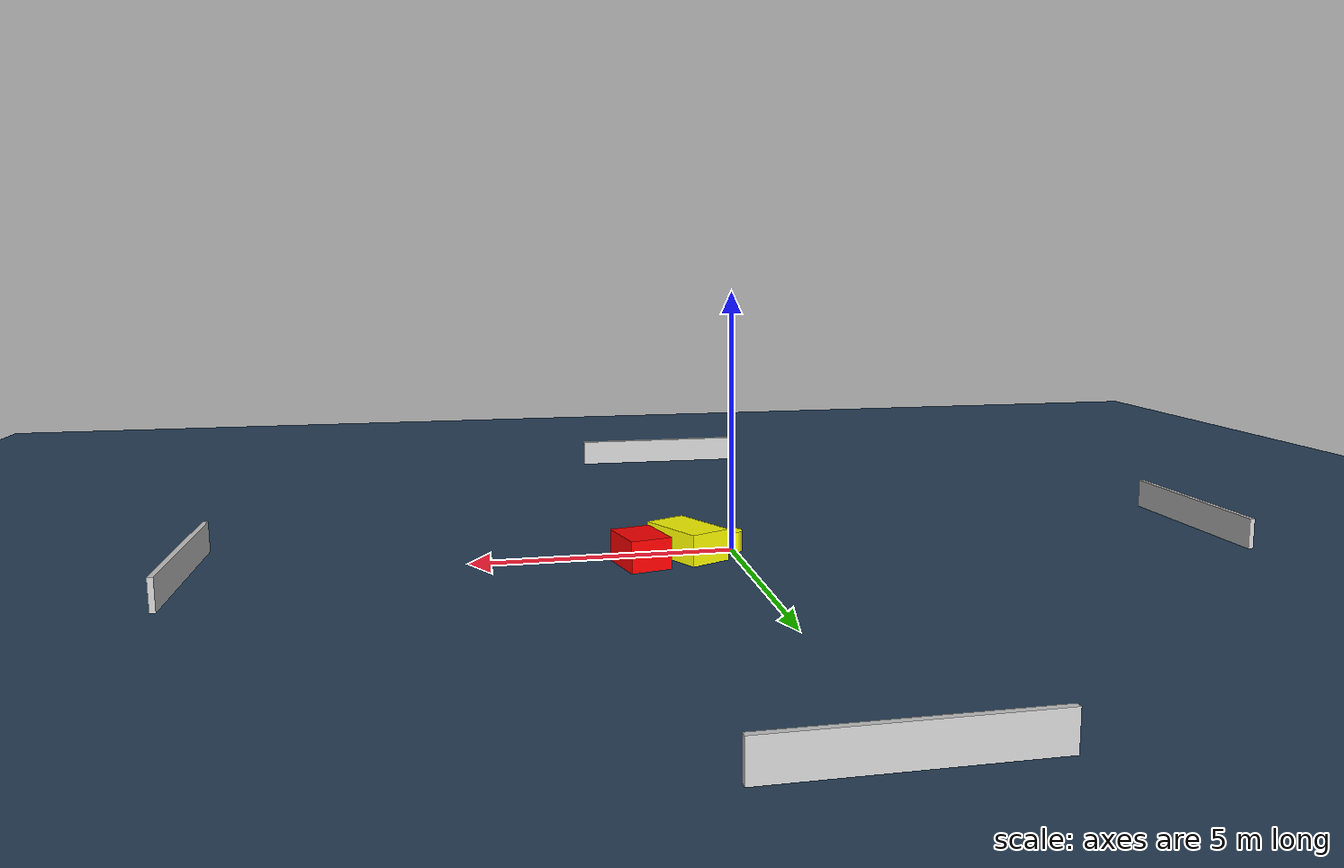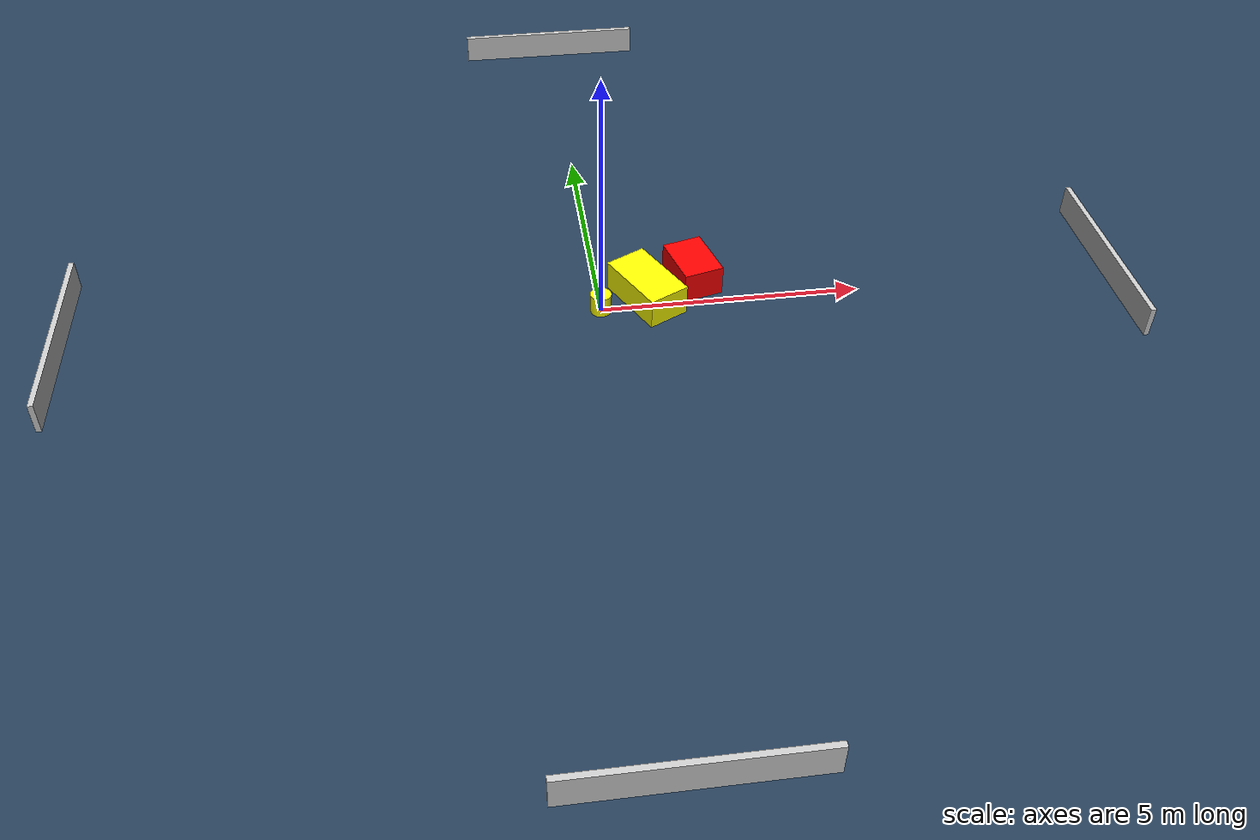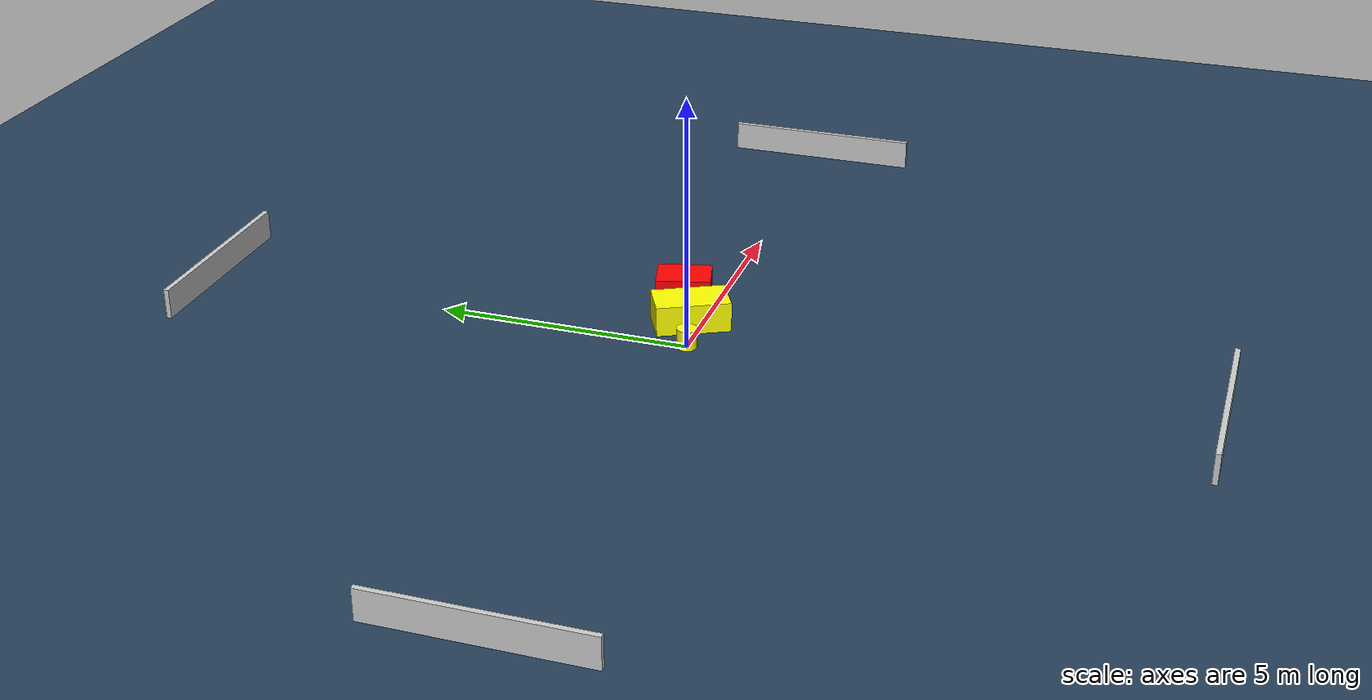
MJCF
<?xml version="1.0" ?>
<mujoco model="generated_environment">
  <option timestep="0.01" integrator="RK4" cone="elliptic"/>
  <default>
    <geom density="1"/>
  </default>
  <asset>
    <texture builtin="gradient" height="3072" name="skybox" rgb1="0.3 0.5 0.7" rgb2="0 0 0" type="skybox" width="512"/>
    <texture builtin="checker" height="300" name="groundplane" rgb1="0.2 0.3 0.4" rgb2="0.1 0.2 0.3" type="2d" width="300"/>
    <material name="groundplane" reflectance="0.2" texrepeat="5 5" texture="groundplane"/>
  </asset>
  <worldbody>
    <light dir="0 0 -1" directional="true" pos="0 0 1.5"/>
    <geom condim="3" friction="0.5 0.005 0.001" material="groundplane" name="floor" pos="0 0 0" size="0 0 0.05" type="plane"/>
    <body name="walls">
      <geom name="wall_1" condim="4" pos="-10.0 0.0 0.3" rgba="0.800000011920929 0.800000011920929 0.800000011920929 1.0" size="0.05 2.0 0.3" type="box"/>
      <geom name="wall_2" condim="4" pos="10.0 0.0 0.3" rgba="0.800000011920929 0.800000011920929 0.800000011920929 1.0" size="0.05 2.0 0.3" type="box"/>
      <geom name="wall_3" condim="4" pos="0.0 -10.0 0.3" rgba="0.800000011920929 0.800000011920929 0.800000011920929 1.0" size="2.0 0.05 0.3" type="box"/>
      <geom name="wall_4" condim="4" pos="0.0 10.0 0.3" rgba="0.800000011920929 0.800000011920929 0.800000011920929 1.0" size="2.0 0.05 0.3" type="box"/>
    </body>
    <body name="robot">
      <joint name="joint_x" type="slide" pos="0 0 0" axis="1 0 0"/>
      <joint name="joint_y" type="slide" pos="0 0 0" axis="0 1 0"/>
      <geom name="robot" type="cylinder" pos="0.0 0.0 0.2" size="0.2 0.2 0.0" mass="5.0" friction="1.0 0.005 0.0001" condim="4" rgba="1.0 1.0 0.0 1.0"/>
    </body>
    <body name="obstacle_1_movable">
      <geom name="obstacle_1_movable" condim="4" pos="0.9144931111285568 0.21868458055273876 0.3" euler="0 0 117.00897161784381" friction="0.0 0.005 0.001" rgba="1.0 1.0 0.0 1.0" size="0.7310486948903259 0.41348931534926586 0.3" type="box" mass="0.1"/>
      <joint type="free"/>
    </body>
    <body name="obstacle_2_static">
      <geom name="obstacle_2_static" condim="4" pos="1.8790358186116218 0.6700545287579363 0.3" euler="0 0 284.2680717591126" friction="0.0 0.005 0.001" rgba="1.0 0.0 0.0 1.0" size="0.5421672496975595 0.3919015371540131 0.3" type="box"/>
    </body>
  </worldbody>
  <actuator>
    <motor name="actuator_x" joint="joint_x" gear="1" ctrlrange="-1 1"/>
    <motor name="actuator_y" joint="joint_y" gear="1" ctrlrange="-1 1"/>
  </actuator>
</mujoco>
